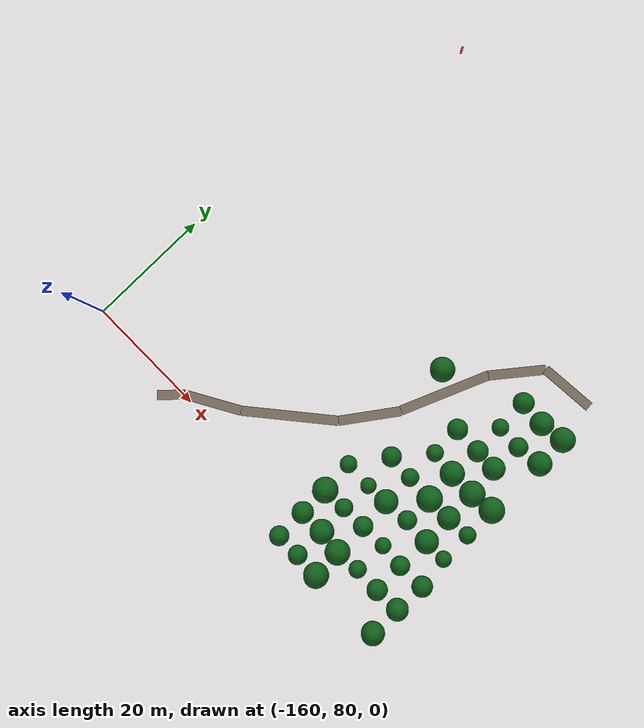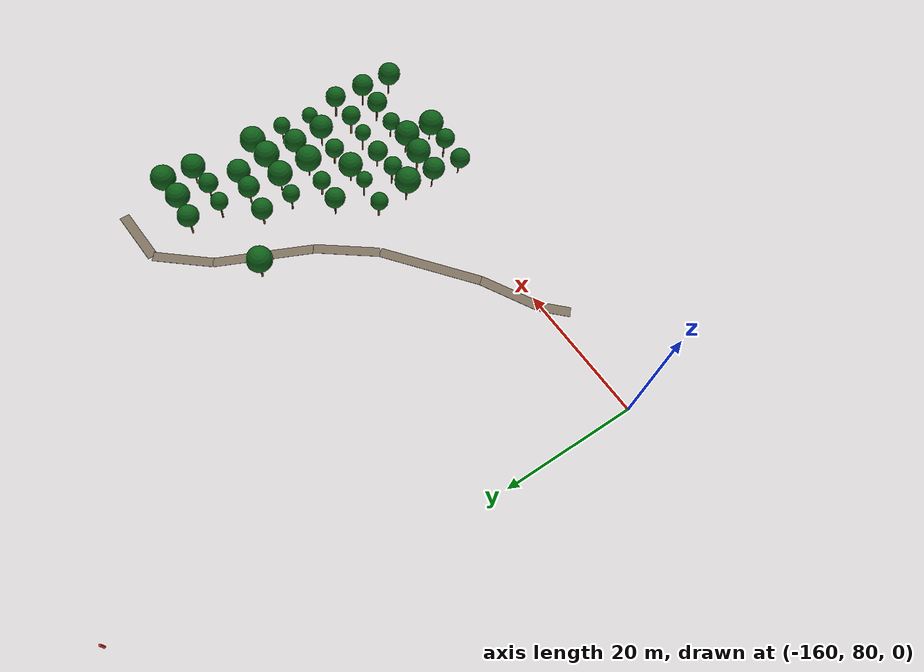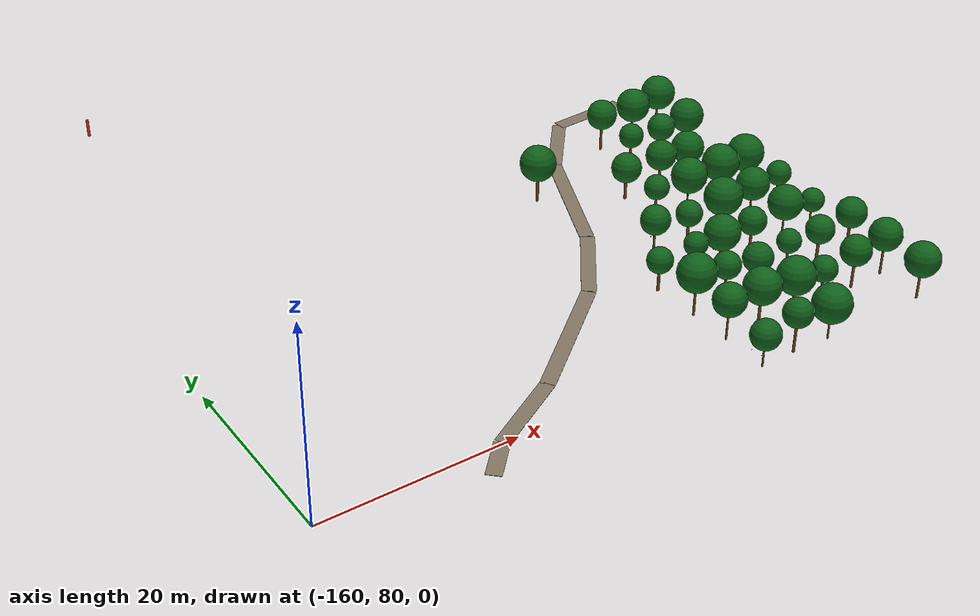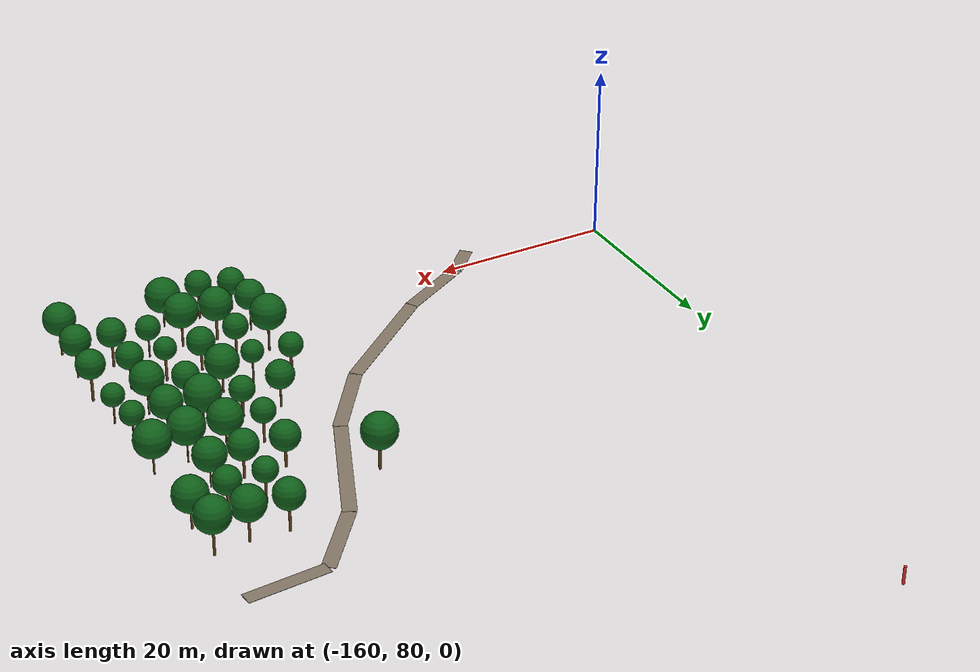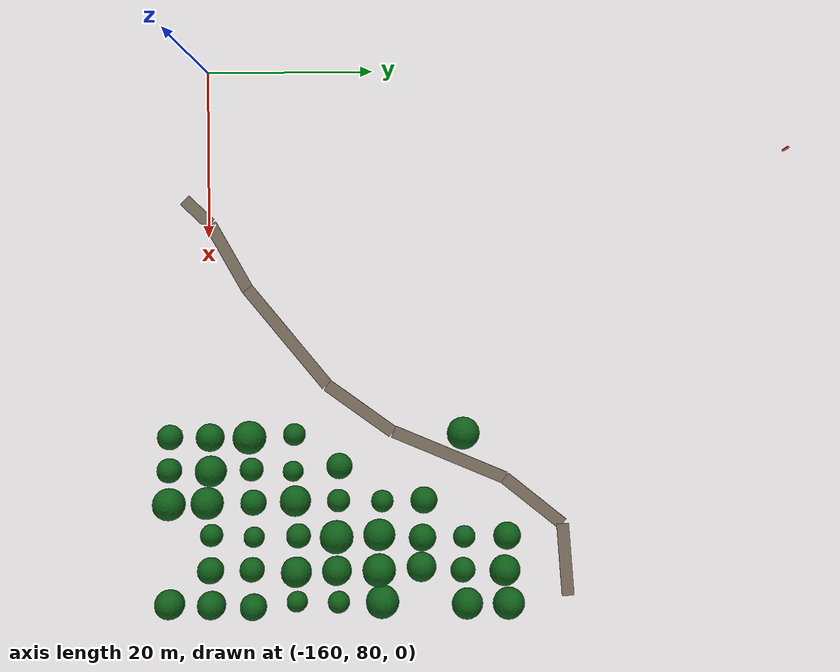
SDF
<sdf version="1.9">
 <world name="cheongsong_orchard">
  <model name="road_66">
   <static>true</static>
   <pose>-100.4 123.0 0.02 0 0 -3.0731</pose>
   <link name="link">
    <collision name="collision">
     <geometry><box><size>8.8 1.5 0.04</size></box></geometry>
     <surface><friction><ode><mu>0.9</mu><mu2>0.9</mu2></ode></friction></surface>
    </collision>
    <visual name="visual">
     <geometry><box><size>8.8 1.5 0.04</size></box></geometry>
     <material><ambient>0.4 0.35 0.28 1</ambient><diffuse>0.5 0.45 0.38 1</diffuse></material>
    </visual>
   </link>
  </model>
  <model name="road_67">
   <static>true</static>
   <pose>-107.6 119.2 0.02 0 0 -2.2514</pose>
   <link name="link">
    <collision name="collision">
     <geometry><box><size>9.0 1.5 0.04</size></box></geometry>
     <surface><friction><ode><mu>0.9</mu><mu2>0.9</mu2></ode></friction></surface>
    </collision>
    <visual name="visual">
     <geometry><box><size>9.0 1.5 0.04</size></box></geometry>
     <material><ambient>0.4 0.35 0.28 1</ambient><diffuse>0.5 0.45 0.38 1</diffuse></material>
    </visual>
   </link>
  </model>
  <model name="road_68">
   <static>true</static>
   <pose>-113.3 109.0 0.02 0 0 -1.9727</pose>
   <link name="link">
    <collision name="collision">
     <geometry><box><size>14.7 1.5 0.04</size></box></geometry>
     <surface><friction><ode><mu>0.9</mu><mu2>0.9</mu2></ode></friction></surface>
    </collision>
    <visual name="visual">
     <geometry><box><size>14.7 1.5 0.04</size></box></geometry>
     <material><ambient>0.4 0.35 0.28 1</ambient><diffuse>0.5 0.45 0.38 1</diffuse></material>
    </visual>
   </link>
  </model>
  <model name="road_69">
   <static>true</static>
   <pose>-119.0 98.2 0.02 0 0 -2.1991</pose>
   <link name="link">
    <collision name="collision">
     <geometry><box><size>9.8 1.5 0.04</size></box></geometry>
     <surface><friction><ode><mu>0.9</mu><mu2>0.9</mu2></ode></friction></surface>
    </collision>
    <visual name="visual">
     <geometry><box><size>9.8 1.5 0.04</size></box></geometry>
     <material><ambient>0.4 0.35 0.28 1</ambient><diffuse>0.5 0.45 0.38 1</diffuse></material>
    </visual>
   </link>
  </model>
  <model name="road_70">
   <static>true</static>
   <pose>-127.8 89.4 0.02 0 0 -2.4568</pose>
   <link name="link">
    <collision name="collision">
     <geometry><box><size>15.2 1.5 0.04</size></box></geometry>
     <surface><friction><ode><mu>0.9</mu><mu2>0.9</mu2></ode></friction></surface>
    </collision>
    <visual name="visual">
     <geometry><box><size>15.2 1.5 0.04</size></box></geometry>
     <material><ambient>0.4 0.35 0.28 1</ambient><diffuse>0.5 0.45 0.38 1</diffuse></material>
    </visual>
   </link>
  </model>
  <model name="road_71">
   <static>true</static>
   <pose>-137.6 82.4 0.02 0 0 -2.6308</pose>
   <link name="link">
    <collision name="collision">
     <geometry><box><size>9.1 1.5 0.04</size></box></geometry>
     <surface><friction><ode><mu>0.9</mu><mu2>0.9</mu2></ode></friction></surface>
    </collision>
    <visual name="visual">
     <geometry><box><size>9.1 1.5 0.04</size></box></geometry>
     <material><ambient>0.4 0.35 0.28 1</ambient><diffuse>0.5 0.45 0.38 1</diffuse></material>
    </visual>
   </link>
  </model>
  <model name="road_72">
   <static>true</static>
   <pose>-143.1 78.6 0.02 0 0 -2.3371</pose>
   <link name="link">
    <collision name="collision">
     <geometry><box><size>4.3 1.5 0.04</size></box></geometry>
     <surface><friction><ode><mu>0.9</mu><mu2>0.9</mu2></ode></friction></surface>
    </collision>
    <visual name="visual">
     <geometry><box><size>4.3 1.5 0.04</size></box></geometry>
     <material><ambient>0.4 0.35 0.28 1</ambient><diffuse>0.5 0.45 0.38 1</diffuse></material>
    </visual>
   </link>
  </model>
  <model name="apple_tree_1970">
   <static>true</static>
   <pose>-116.00 75.99 0 0 0 0</pose>
   <link name="link">
    <collision name="trunk_col">
     <pose>0 0 1.03 0 0 0</pose>
     <geometry><cylinder><radius>0.085</radius><length>2.05</length></cylinder></geometry>
    </collision>
    <visual name="trunk_vis">
     <pose>0 0 1.03 0 0 0</pose>
     <geometry><cylinder><radius>0.085</radius><length>2.05</length></cylinder></geometry>
     <material><ambient>0.35 0.22 0.08 1</ambient><diffuse>0.45 0.30 0.12 1</diffuse></material>
    </visual>
    <collision name="canopy_col">
     <pose>0 0 3.55 0 0 0</pose>
     <geometry><sphere><radius>1.50</radius></sphere></geometry>
    </collision>
    <visual name="canopy_vis">
     <pose>0 0 3.55 0 0 0</pose>
     <geometry><sphere><radius>1.50</radius></sphere></geometry>
     <material><ambient>0.04 0.28 0.06 1</ambient><diffuse>0.06 0.38 0.10 1</diffuse></material>
    </visual>
   </link>
  </model>
  <model name="apple_tree_1971">
   <static>true</static>
   <pose>-112.14 76.09 0 0 0 0</pose>
   <link name="link">
    <collision name="trunk_col">
     <pose>0 0 1.45 0 0 0</pose>
     <geometry><cylinder><radius>0.124</radius><length>2.89</length></cylinder></geometry>
    </collision>
    <visual name="trunk_vis">
     <pose>0 0 1.45 0 0 0</pose>
     <geometry><cylinder><radius>0.124</radius><length>2.89</length></cylinder></geometry>
     <material><ambient>0.35 0.22 0.08 1</ambient><diffuse>0.45 0.30 0.12 1</diffuse></material>
    </visual>
    <collision name="canopy_col">
     <pose>0 0 4.36 0 0 0</pose>
     <geometry><sphere><radius>1.46</radius></sphere></geometry>
    </collision>
    <visual name="canopy_vis">
     <pose>0 0 4.36 0 0 0</pose>
     <geometry><sphere><radius>1.46</radius></sphere></geometry>
     <material><ambient>0.04 0.28 0.06 1</ambient><diffuse>0.06 0.38 0.10 1</diffuse></material>
    </visual>
   </link>
  </model>
  <model name="apple_tree_1972">
   <static>true</static>
   <pose>-108.09 75.88 0 0 0 0</pose>
   <link name="link">
    <collision name="trunk_col">
     <pose>0 0 1.00 0 0 0</pose>
     <geometry><cylinder><radius>0.090</radius><length>2.00</length></cylinder></geometry>
    </collision>
    <visual name="trunk_vis">
     <pose>0 0 1.00 0 0 0</pose>
     <geometry><cylinder><radius>0.090</radius><length>2.00</length></cylinder></geometry>
     <material><ambient>0.35 0.22 0.08 1</ambient><diffuse>0.45 0.30 0.12 1</diffuse></material>
    </visual>
    <collision name="canopy_col">
     <pose>0 0 3.94 0 0 0</pose>
     <geometry><sphere><radius>1.93</radius></sphere></geometry>
    </collision>
    <visual name="canopy_vis">
     <pose>0 0 3.94 0 0 0</pose>
     <geometry><sphere><radius>1.93</radius></sphere></geometry>
     <material><ambient>0.04 0.28 0.06 1</ambient><diffuse>0.06 0.38 0.10 1</diffuse></material>
    </visual>
   </link>
  </model>
  <model name="apple_tree_1975">
   <static>true</static>
   <pose>-96.37 76.00 0 0 0 0</pose>
   <link name="link">
    <collision name="trunk_col">
     <pose>0 0 1.32 0 0 0</pose>
     <geometry><cylinder><radius>0.115</radius><length>2.64</length></cylinder></geometry>
    </collision>
    <visual name="trunk_vis">
     <pose>0 0 1.32 0 0 0</pose>
     <geometry><cylinder><radius>0.115</radius><length>2.64</length></cylinder></geometry>
     <material><ambient>0.35 0.22 0.08 1</ambient><diffuse>0.45 0.30 0.12 1</diffuse></material>
    </visual>
    <collision name="canopy_col">
     <pose>0 0 4.41 0 0 0</pose>
     <geometry><sphere><radius>1.77</radius></sphere></geometry>
    </collision>
    <visual name="canopy_vis">
     <pose>0 0 4.41 0 0 0</pose>
     <geometry><sphere><radius>1.77</radius></sphere></geometry>
     <material><ambient>0.04 0.28 0.06 1</ambient><diffuse>0.06 0.38 0.10 1</diffuse></material>
    </visual>
   </link>
  </model>
  <model name="apple_tree_2025">
   <static>true</static>
   <pose>-116.01 80.96 0 0 0 0</pose>
   <link name="link">
    <collision name="trunk_col">
     <pose>0 0 1.40 0 0 0</pose>
     <geometry><cylinder><radius>0.094</radius><length>2.80</length></cylinder></geometry>
    </collision>
    <visual name="trunk_vis">
     <pose>0 0 1.40 0 0 0</pose>
     <geometry><cylinder><radius>0.094</radius><length>2.80</length></cylinder></geometry>
     <material><ambient>0.35 0.22 0.08 1</ambient><diffuse>0.45 0.30 0.12 1</diffuse></material>
    </visual>
    <collision name="canopy_col">
     <pose>0 0 4.46 0 0 0</pose>
     <geometry><sphere><radius>1.66</radius></sphere></geometry>
    </collision>
    <visual name="canopy_vis">
     <pose>0 0 4.46 0 0 0</pose>
     <geometry><sphere><radius>1.66</radius></sphere></geometry>
     <material><ambient>0.04 0.28 0.06 1</ambient><diffuse>0.06 0.38 0.10 1</diffuse></material>
    </visual>
   </link>
  </model>
  <model name="apple_tree_2026">
   <static>true</static>
   <pose>-112.04 81.01 0 0 0 0</pose>
   <link name="link">
    <collision name="trunk_col">
     <pose>0 0 1.30 0 0 0</pose>
     <geometry><cylinder><radius>0.142</radius><length>2.61</length></cylinder></geometry>
    </collision>
    <visual name="trunk_vis">
     <pose>0 0 1.30 0 0 0</pose>
     <geometry><cylinder><radius>0.142</radius><length>2.61</length></cylinder></geometry>
     <material><ambient>0.35 0.22 0.08 1</ambient><diffuse>0.45 0.30 0.12 1</diffuse></material>
    </visual>
    <collision name="canopy_col">
     <pose>0 0 4.46 0 0 0</pose>
     <geometry><sphere><radius>1.85</radius></sphere></geometry>
    </collision>
    <visual name="canopy_vis">
     <pose>0 0 4.46 0 0 0</pose>
     <geometry><sphere><radius>1.85</radius></sphere></geometry>
     <material><ambient>0.04 0.28 0.06 1</ambient><diffuse>0.06 0.38 0.10 1</diffuse></material>
    </visual>
   </link>
  </model>
  <model name="apple_tree_2027">
   <static>true</static>
   <pose>-108.27 80.54 0 0 0 0</pose>
   <link name="link">
    <collision name="trunk_col">
     <pose>0 0 1.28 0 0 0</pose>
     <geometry><cylinder><radius>0.120</radius><length>2.56</length></cylinder></geometry>
    </collision>
    <visual name="trunk_vis">
     <pose>0 0 1.28 0 0 0</pose>
     <geometry><cylinder><radius>0.120</radius><length>2.56</length></cylinder></geometry>
     <material><ambient>0.35 0.22 0.08 1</ambient><diffuse>0.45 0.30 0.12 1</diffuse></material>
    </visual>
    <collision name="canopy_col">
     <pose>0 0 4.47 0 0 0</pose>
     <geometry><sphere><radius>1.91</radius></sphere></geometry>
    </collision>
    <visual name="canopy_vis">
     <pose>0 0 4.47 0 0 0</pose>
     <geometry><sphere><radius>1.91</radius></sphere></geometry>
     <material><ambient>0.04 0.28 0.06 1</ambient><diffuse>0.06 0.38 0.10 1</diffuse></material>
    </visual>
   </link>
  </model>
  <model name="apple_tree_2028">
   <static>true</static>
   <pose>-104.34 80.82 0 0 0 0</pose>
   <link name="link">
    <collision name="trunk_col">
     <pose>0 0 1.13 0 0 0</pose>
     <geometry><cylinder><radius>0.095</radius><length>2.25</length></cylinder></geometry>
    </collision>
    <visual name="trunk_vis">
     <pose>0 0 1.13 0 0 0</pose>
     <geometry><cylinder><radius>0.095</radius><length>2.25</length></cylinder></geometry>
     <material><ambient>0.35 0.22 0.08 1</ambient><diffuse>0.45 0.30 0.12 1</diffuse></material>
    </visual>
    <collision name="canopy_col">
     <pose>0 0 3.60 0 0 0</pose>
     <geometry><sphere><radius>1.34</radius></sphere></geometry>
    </collision>
    <visual name="canopy_vis">
     <pose>0 0 3.60 0 0 0</pose>
     <geometry><sphere><radius>1.34</radius></sphere></geometry>
     <material><ambient>0.04 0.28 0.06 1</ambient><diffuse>0.06 0.38 0.10 1</diffuse></material>
    </visual>
   </link>
  </model>
  <model name="apple_tree_2029">
   <static>true</static>
   <pose>-100.29 80.81 0 0 0 0</pose>
   <link name="link">
    <collision name="trunk_col">
     <pose>0 0 1.33 0 0 0</pose>
     <geometry><cylinder><radius>0.130</radius><length>2.65</length></cylinder></geometry>
    </collision>
    <visual name="trunk_vis">
     <pose>0 0 1.33 0 0 0</pose>
     <geometry><cylinder><radius>0.130</radius><length>2.65</length></cylinder></geometry>
     <material><ambient>0.35 0.22 0.08 1</ambient><diffuse>0.45 0.30 0.12 1</diffuse></material>
    </visual>
    <collision name="canopy_col">
     <pose>0 0 4.22 0 0 0</pose>
     <geometry><sphere><radius>1.57</radius></sphere></geometry>
    </collision>
    <visual name="canopy_vis">
     <pose>0 0 4.22 0 0 0</pose>
     <geometry><sphere><radius>1.57</radius></sphere></geometry>
     <material><ambient>0.04 0.28 0.06 1</ambient><diffuse>0.06 0.38 0.10 1</diffuse></material>
    </visual>
   </link>
  </model>
  <model name="apple_tree_2030">
   <static>true</static>
   <pose>-96.26 80.96 0 0 0 0</pose>
   <link name="link">
    <collision name="trunk_col">
     <pose>0 0 1.42 0 0 0</pose>
     <geometry><cylinder><radius>0.114</radius><length>2.85</length></cylinder></geometry>
    </collision>
    <visual name="trunk_vis">
     <pose>0 0 1.42 0 0 0</pose>
     <geometry><cylinder><radius>0.114</radius><length>2.85</length></cylinder></geometry>
     <material><ambient>0.35 0.22 0.08 1</ambient><diffuse>0.45 0.30 0.12 1</diffuse></material>
    </visual>
    <collision name="canopy_col">
     <pose>0 0 4.53 0 0 0</pose>
     <geometry><sphere><radius>1.68</radius></sphere></geometry>
    </collision>
    <visual name="canopy_vis">
     <pose>0 0 4.53 0 0 0</pose>
     <geometry><sphere><radius>1.68</radius></sphere></geometry>
     <material><ambient>0.04 0.28 0.06 1</ambient><diffuse>0.06 0.38 0.10 1</diffuse></material>
    </visual>
   </link>
  </model>
  <model name="apple_tree_2082">
   <static>true</static>
   <pose>-115.99 85.65 0 0 0 0</pose>
   <link name="link">
    <collision name="trunk_col">
     <pose>0 0 1.42 0 0 0</pose>
     <geometry><cylinder><radius>0.114</radius><length>2.83</length></cylinder></geometry>
    </collision>
    <visual name="trunk_vis">
     <pose>0 0 1.42 0 0 0</pose>
     <geometry><cylinder><radius>0.114</radius><length>2.83</length></cylinder></geometry>
     <material><ambient>0.35 0.22 0.08 1</ambient><diffuse>0.45 0.30 0.12 1</diffuse></material>
    </visual>
    <collision name="canopy_col">
     <pose>0 0 4.79 0 0 0</pose>
     <geometry><sphere><radius>1.96</radius></sphere></geometry>
    </collision>
    <visual name="canopy_vis">
     <pose>0 0 4.79 0 0 0</pose>
     <geometry><sphere><radius>1.96</radius></sphere></geometry>
     <material><ambient>0.04 0.28 0.06 1</ambient><diffuse>0.06 0.38 0.10 1</diffuse></material>
    </visual>
   </link>
  </model>
  <model name="apple_tree_2083">
   <static>true</static>
   <pose>-112.18 85.75 0 0 0 0</pose>
   <link name="link">
    <collision name="trunk_col">
     <pose>0 0 1.40 0 0 0</pose>
     <geometry><cylinder><radius>0.124</radius><length>2.80</length></cylinder></geometry>
    </collision>
    <visual name="trunk_vis">
     <pose>0 0 1.40 0 0 0</pose>
     <geometry><cylinder><radius>0.124</radius><length>2.80</length></cylinder></geometry>
     <material><ambient>0.35 0.22 0.08 1</ambient><diffuse>0.45 0.30 0.12 1</diffuse></material>
    </visual>
    <collision name="canopy_col">
     <pose>0 0 4.19 0 0 0</pose>
     <geometry><sphere><radius>1.39</radius></sphere></geometry>
    </collision>
    <visual name="canopy_vis">
     <pose>0 0 4.19 0 0 0</pose>
     <geometry><sphere><radius>1.39</radius></sphere></geometry>
     <material><ambient>0.04 0.28 0.06 1</ambient><diffuse>0.06 0.38 0.10 1</diffuse></material>
    </visual>
   </link>
  </model>
  <model name="apple_tree_2084">
   <static>true</static>
   <pose>-108.18 85.81 0 0 0 0</pose>
   <link name="link">
    <collision name="trunk_col">
     <pose>0 0 1.01 0 0 0</pose>
     <geometry><cylinder><radius>0.122</radius><length>2.02</length></cylinder></geometry>
    </collision>
    <visual name="trunk_vis">
     <pose>0 0 1.01 0 0 0</pose>
     <geometry><cylinder><radius>0.122</radius><length>2.02</length></cylinder></geometry>
     <material><ambient>0.35 0.22 0.08 1</ambient><diffuse>0.45 0.30 0.12 1</diffuse></material>
    </visual>
    <collision name="canopy_col">
     <pose>0 0 3.56 0 0 0</pose>
     <geometry><sphere><radius>1.53</radius></sphere></geometry>
    </collision>
    <visual name="canopy_vis">
     <pose>0 0 3.56 0 0 0</pose>
     <geometry><sphere><radius>1.53</radius></sphere></geometry>
     <material><ambient>0.04 0.28 0.06 1</ambient><diffuse>0.06 0.38 0.10 1</diffuse></material>
    </visual>
   </link>
  </model>
  <model name="apple_tree_2085">
   <static>true</static>
   <pose>-104.15 85.93 0 0 0 0</pose>
   <link name="link">
    <collision name="trunk_col">
     <pose>0 0 1.35 0 0 0</pose>
     <geometry><cylinder><radius>0.134</radius><length>2.71</length></cylinder></geometry>
    </collision>
    <visual name="trunk_vis">
     <pose>0 0 1.35 0 0 0</pose>
     <geometry><cylinder><radius>0.134</radius><length>2.71</length></cylinder></geometry>
     <material><ambient>0.35 0.22 0.08 1</ambient><diffuse>0.45 0.30 0.12 1</diffuse></material>
    </visual>
    <collision name="canopy_col">
     <pose>0 0 3.94 0 0 0</pose>
     <geometry><sphere><radius>1.23</radius></sphere></geometry>
    </collision>
    <visual name="canopy_vis">
     <pose>0 0 3.94 0 0 0</pose>
     <geometry><sphere><radius>1.23</radius></sphere></geometry>
     <material><ambient>0.04 0.28 0.06 1</ambient><diffuse>0.06 0.38 0.10 1</diffuse></material>
    </visual>
   </link>
  </model>
  <model name="apple_tree_2086">
   <static>true</static>
   <pose>-100.32 85.68 0 0 0 0</pose>
   <link name="link">
    <collision name="trunk_col">
     <pose>0 0 1.29 0 0 0</pose>
     <geometry><cylinder><radius>0.149</radius><length>2.58</length></cylinder></geometry>
    </collision>
    <visual name="trunk_vis">
     <pose>0 0 1.29 0 0 0</pose>
     <geometry><cylinder><radius>0.149</radius><length>2.58</length></cylinder></geometry>
     <material><ambient>0.35 0.22 0.08 1</ambient><diffuse>0.45 0.30 0.12 1</diffuse></material>
    </visual>
    <collision name="canopy_col">
     <pose>0 0 4.06 0 0 0</pose>
     <geometry><sphere><radius>1.47</radius></sphere></geometry>
    </collision>
    <visual name="canopy_vis">
     <pose>0 0 4.06 0 0 0</pose>
     <geometry><sphere><radius>1.47</radius></sphere></geometry>
     <material><ambient>0.04 0.28 0.06 1</ambient><diffuse>0.06 0.38 0.10 1</diffuse></material>
    </visual>
   </link>
  </model>
  <model name="apple_tree_2087">
   <static>true</static>
   <pose>-95.99 85.87 0 0 0 0</pose>
   <link name="link">
    <collision name="trunk_col">
     <pose>0 0 1.42 0 0 0</pose>
     <geometry><cylinder><radius>0.140</radius><length>2.85</length></cylinder></geometry>
    </collision>
    <visual name="trunk_vis">
     <pose>0 0 1.42 0 0 0</pose>
     <geometry><cylinder><radius>0.140</radius><length>2.85</length></cylinder></geometry>
     <material><ambient>0.35 0.22 0.08 1</ambient><diffuse>0.45 0.30 0.12 1</diffuse></material>
    </visual>
    <collision name="canopy_col">
     <pose>0 0 4.42 0 0 0</pose>
     <geometry><sphere><radius>1.58</radius></sphere></geometry>
    </collision>
    <visual name="canopy_vis">
     <pose>0 0 4.42 0 0 0</pose>
     <geometry><sphere><radius>1.58</radius></sphere></geometry>
     <material><ambient>0.04 0.28 0.06 1</ambient><diffuse>0.06 0.38 0.10 1</diffuse></material>
    </visual>
   </link>
  </model>
  <model name="apple_tree_2138">
   <static>true</static>
   <pose>-116.20 90.72 0 0 0 0</pose>
   <link name="link">
    <collision name="trunk_col">
     <pose>0 0 1.07 0 0 0</pose>
     <geometry><cylinder><radius>0.145</radius><length>2.14</length></cylinder></geometry>
    </collision>
    <visual name="trunk_vis">
     <pose>0 0 1.07 0 0 0</pose>
     <geometry><cylinder><radius>0.145</radius><length>2.14</length></cylinder></geometry>
     <material><ambient>0.35 0.22 0.08 1</ambient><diffuse>0.45 0.30 0.12 1</diffuse></material>
    </visual>
    <collision name="canopy_col">
     <pose>0 0 3.47 0 0 0</pose>
     <geometry><sphere><radius>1.33</radius></sphere></geometry>
    </collision>
    <visual name="canopy_vis">
     <pose>0 0 3.47 0 0 0</pose>
     <geometry><sphere><radius>1.33</radius></sphere></geometry>
     <material><ambient>0.04 0.28 0.06 1</ambient><diffuse>0.06 0.38 0.10 1</diffuse></material>
    </visual>
   </link>
  </model>
  <model name="apple_tree_2139">
   <static>true</static>
   <pose>-111.89 90.60 0 0 0 0</pose>
   <link name="link">
    <collision name="trunk_col">
     <pose>0 0 1.32 0 0 0</pose>
     <geometry><cylinder><radius>0.099</radius><length>2.64</length></cylinder></geometry>
    </collision>
    <visual name="trunk_vis">
     <pose>0 0 1.32 0 0 0</pose>
     <geometry><cylinder><radius>0.099</radius><length>2.64</length></cylinder></geometry>
     <material><ambient>0.35 0.22 0.08 1</ambient><diffuse>0.45 0.30 0.12 1</diffuse></material>
    </visual>
    <collision name="canopy_col">
     <pose>0 0 3.86 0 0 0</pose>
     <geometry><sphere><radius>1.22</radius></sphere></geometry>
    </collision>
    <visual name="canopy_vis">
     <pose>0 0 3.86 0 0 0</pose>
     <geometry><sphere><radius>1.22</radius></sphere></geometry>
     <material><ambient>0.04 0.28 0.06 1</ambient><diffuse>0.06 0.38 0.10 1</diffuse></material>
    </visual>
   </link>
  </model>
  <model name="apple_tree_2140">
   <static>true</static>
   <pose>-108.36 90.82 0 0 0 0</pose>
   <link name="link">
    <collision name="trunk_col">
     <pose>0 0 0.99 0 0 0</pose>
     <geometry><cylinder><radius>0.108</radius><length>1.97</length></cylinder></geometry>
    </collision>
    <visual name="trunk_vis">
     <pose>0 0 0.99 0 0 0</pose>
     <geometry><cylinder><radius>0.108</radius><length>1.97</length></cylinder></geometry>
     <material><ambient>0.35 0.22 0.08 1</ambient><diffuse>0.45 0.30 0.12 1</diffuse></material>
    </visual>
    <collision name="canopy_col">
     <pose>0 0 3.81 0 0 0</pose>
     <geometry><sphere><radius>1.84</radius></sphere></geometry>
    </collision>
    <visual name="canopy_vis">
     <pose>0 0 3.81 0 0 0</pose>
     <geometry><sphere><radius>1.84</radius></sphere></geometry>
     <material><ambient>0.04 0.28 0.06 1</ambient><diffuse>0.06 0.38 0.10 1</diffuse></material>
    </visual>
   </link>
  </model>
  <model name="apple_tree_2141">
   <static>true</static>
   <pose>-104.19 91.11 0 0 0 0</pose>
   <link name="link">
    <collision name="trunk_col">
     <pose>0 0 1.05 0 0 0</pose>
     <geometry><cylinder><radius>0.138</radius><length>2.10</length></cylinder></geometry>
    </collision>
    <visual name="trunk_vis">
     <pose>0 0 1.05 0 0 0</pose>
     <geometry><cylinder><radius>0.138</radius><length>2.10</length></cylinder></geometry>
     <material><ambient>0.35 0.22 0.08 1</ambient><diffuse>0.45 0.30 0.12 1</diffuse></material>
    </visual>
    <collision name="canopy_col">
     <pose>0 0 3.56 0 0 0</pose>
     <geometry><sphere><radius>1.46</radius></sphere></geometry>
    </collision>
    <visual name="canopy_vis">
     <pose>0 0 3.56 0 0 0</pose>
     <geometry><sphere><radius>1.46</radius></sphere></geometry>
     <material><ambient>0.04 0.28 0.06 1</ambient><diffuse>0.06 0.38 0.10 1</diffuse></material>
    </visual>
   </link>
  </model>
  <model name="apple_tree_2142">
   <static>true</static>
   <pose>-100.06 90.95 0 0 0 0</pose>
   <link name="link">
    <collision name="trunk_col">
     <pose>0 0 1.28 0 0 0</pose>
     <geometry><cylinder><radius>0.090</radius><length>2.57</length></cylinder></geometry>
    </collision>
    <visual name="trunk_vis">
     <pose>0 0 1.28 0 0 0</pose>
     <geometry><cylinder><radius>0.090</radius><length>2.57</length></cylinder></geometry>
     <material><ambient>0.35 0.22 0.08 1</ambient><diffuse>0.45 0.30 0.12 1</diffuse></material>
    </visual>
    <collision name="canopy_col">
     <pose>0 0 4.38 0 0 0</pose>
     <geometry><sphere><radius>1.81</radius></sphere></geometry>
    </collision>
    <visual name="canopy_vis">
     <pose>0 0 4.38 0 0 0</pose>
     <geometry><sphere><radius>1.81</radius></sphere></geometry>
     <material><ambient>0.04 0.28 0.06 1</ambient><diffuse>0.06 0.38 0.10 1</diffuse></material>
    </visual>
   </link>
  </model>
  <model name="apple_tree_2143">
   <static>true</static>
   <pose>-96.37 90.88 0 0 0 0</pose>
   <link name="link">
    <collision name="trunk_col">
     <pose>0 0 1.11 0 0 0</pose>
     <geometry><cylinder><radius>0.095</radius><length>2.22</length></cylinder></geometry>
    </collision>
    <visual name="trunk_vis">
     <pose>0 0 1.11 0 0 0</pose>
     <geometry><cylinder><radius>0.095</radius><length>2.22</length></cylinder></geometry>
     <material><ambient>0.35 0.22 0.08 1</ambient><diffuse>0.45 0.30 0.12 1</diffuse></material>
    </visual>
    <collision name="canopy_col">
     <pose>0 0 3.45 0 0 0</pose>
     <geometry><sphere><radius>1.24</radius></sphere></geometry>
    </collision>
    <visual name="canopy_vis">
     <pose>0 0 3.45 0 0 0</pose>
     <geometry><sphere><radius>1.24</radius></sphere></geometry>
     <material><ambient>0.04 0.28 0.06 1</ambient><diffuse>0.06 0.38 0.10 1</diffuse></material>
    </visual>
   </link>
  </model>
  <model name="apple_tree_2180">
   <static>true</static>
   <pose>-112.47 96.08 0 0 0 0</pose>
   <link name="link">
    <collision name="trunk_col">
     <pose>0 0 1.19 0 0 0</pose>
     <geometry><cylinder><radius>0.108</radius><length>2.39</length></cylinder></geometry>
    </collision>
    <visual name="trunk_vis">
     <pose>0 0 1.19 0 0 0</pose>
     <geometry><cylinder><radius>0.108</radius><length>2.39</length></cylinder></geometry>
     <material><ambient>0.35 0.22 0.08 1</ambient><diffuse>0.45 0.30 0.12 1</diffuse></material>
    </visual>
    <collision name="canopy_col">
     <pose>0 0 3.93 0 0 0</pose>
     <geometry><sphere><radius>1.54</radius></sphere></geometry>
    </collision>
    <visual name="canopy_vis">
     <pose>0 0 3.93 0 0 0</pose>
     <geometry><sphere><radius>1.54</radius></sphere></geometry>
     <material><ambient>0.04 0.28 0.06 1</ambient><diffuse>0.06 0.38 0.10 1</diffuse></material>
    </visual>
   </link>
  </model>
  <model name="apple_tree_2181">
   <static>true</static>
   <pose>-108.31 95.87 0 0 0 0</pose>
   <link name="link">
    <collision name="trunk_col">
     <pose>0 0 1.00 0 0 0</pose>
     <geometry><cylinder><radius>0.149</radius><length>2.00</length></cylinder></geometry>
    </collision>
    <visual name="trunk_vis">
     <pose>0 0 1.00 0 0 0</pose>
     <geometry><cylinder><radius>0.149</radius><length>2.00</length></cylinder></geometry>
     <material><ambient>0.35 0.22 0.08 1</ambient><diffuse>0.45 0.30 0.12 1</diffuse></material>
    </visual>
    <collision name="canopy_col">
     <pose>0 0 3.37 0 0 0</pose>
     <geometry><sphere><radius>1.37</radius></sphere></geometry>
    </collision>
    <visual name="canopy_vis">
     <pose>0 0 3.37 0 0 0</pose>
     <geometry><sphere><radius>1.37</radius></sphere></geometry>
     <material><ambient>0.04 0.28 0.06 1</ambient><diffuse>0.06 0.38 0.10 1</diffuse></material>
    </visual>
   </link>
  </model>
  <model name="apple_tree_2182">
   <static>true</static>
   <pose>-104.09 95.68 0 0 0 0</pose>
   <link name="link">
    <collision name="trunk_col">
     <pose>0 0 1.03 0 0 0</pose>
     <geometry><cylinder><radius>0.096</radius><length>2.06</length></cylinder></geometry>
    </collision>
    <visual name="trunk_vis">
     <pose>0 0 1.03 0 0 0</pose>
     <geometry><cylinder><radius>0.096</radius><length>2.06</length></cylinder></geometry>
     <material><ambient>0.35 0.22 0.08 1</ambient><diffuse>0.45 0.30 0.12 1</diffuse></material>
    </visual>
    <collision name="canopy_col">
     <pose>0 0 4.05 0 0 0</pose>
     <geometry><sphere><radius>1.99</radius></sphere></geometry>
    </collision>
    <visual name="canopy_vis">
     <pose>0 0 4.05 0 0 0</pose>
     <geometry><sphere><radius>1.99</radius></sphere></geometry>
     <material><ambient>0.04 0.28 0.06 1</ambient><diffuse>0.06 0.38 0.10 1</diffuse></material>
    </visual>
   </link>
  </model>
  <model name="apple_tree_2183">
   <static>true</static>
   <pose>-100.15 95.71 0 0 0 0</pose>
   <link name="link">
    <collision name="trunk_col">
     <pose>0 0 1.24 0 0 0</pose>
     <geometry><cylinder><radius>0.094</radius><length>2.48</length></cylinder></geometry>
    </collision>
    <visual name="trunk_vis">
     <pose>0 0 1.24 0 0 0</pose>
     <geometry><cylinder><radius>0.094</radius><length>2.48</length></cylinder></geometry>
     <material><ambient>0.35 0.22 0.08 1</ambient><diffuse>0.45 0.30 0.12 1</diffuse></material>
    </visual>
    <collision name="canopy_col">
     <pose>0 0 4.23 0 0 0</pose>
     <geometry><sphere><radius>1.75</radius></sphere></geometry>
    </collision>
    <visual name="canopy_vis">
     <pose>0 0 4.23 0 0 0</pose>
     <geometry><sphere><radius>1.75</radius></sphere></geometry>
     <material><ambient>0.04 0.28 0.06 1</ambient><diffuse>0.06 0.38 0.10 1</diffuse></material>
    </visual>
   </link>
  </model>
  <model name="apple_tree_2184">
   <static>true</static>
   <pose>-96.44 95.90 0 0 0 0</pose>
   <link name="link">
    <collision name="trunk_col">
     <pose>0 0 1.44 0 0 0</pose>
     <geometry><cylinder><radius>0.081</radius><length>2.87</length></cylinder></geometry>
    </collision>
    <visual name="trunk_vis">
     <pose>0 0 1.44 0 0 0</pose>
     <geometry><cylinder><radius>0.081</radius><length>2.87</length></cylinder></geometry>
     <material><ambient>0.35 0.22 0.08 1</ambient><diffuse>0.45 0.30 0.12 1</diffuse></material>
    </visual>
    <collision name="canopy_col">
     <pose>0 0 4.18 0 0 0</pose>
     <geometry><sphere><radius>1.30</radius></sphere></geometry>
    </collision>
    <visual name="canopy_vis">
     <pose>0 0 4.18 0 0 0</pose>
     <geometry><sphere><radius>1.30</radius></sphere></geometry>
     <material><ambient>0.04 0.28 0.06 1</ambient><diffuse>0.06 0.38 0.10 1</diffuse></material>
    </visual>
   </link>
  </model>
  <model name="apple_tree_2222">
   <static>true</static>
   <pose>-108.26 101.10 0 0 0 0</pose>
   <link name="link">
    <collision name="trunk_col">
     <pose>0 0 1.24 0 0 0</pose>
     <geometry><cylinder><radius>0.125</radius><length>2.49</length></cylinder></geometry>
    </collision>
    <visual name="trunk_vis">
     <pose>0 0 1.24 0 0 0</pose>
     <geometry><cylinder><radius>0.125</radius><length>2.49</length></cylinder></geometry>
     <material><ambient>0.35 0.22 0.08 1</ambient><diffuse>0.45 0.30 0.12 1</diffuse></material>
    </visual>
    <collision name="canopy_col">
     <pose>0 0 3.80 0 0 0</pose>
     <geometry><sphere><radius>1.32</radius></sphere></geometry>
    </collision>
    <visual name="canopy_vis">
     <pose>0 0 3.80 0 0 0</pose>
     <geometry><sphere><radius>1.32</radius></sphere></geometry>
     <material><ambient>0.04 0.28 0.06 1</ambient><diffuse>0.06 0.38 0.10 1</diffuse></material>
    </visual>
   </link>
  </model>
  <model name="apple_tree_2223">
   <static>true</static>
   <pose>-104.33 100.73 0 0 0 0</pose>
   <link name="link">
    <collision name="trunk_col">
     <pose>0 0 1.10 0 0 0</pose>
     <geometry><cylinder><radius>0.087</radius><length>2.20</length></cylinder></geometry>
    </collision>
    <visual name="trunk_vis">
     <pose>0 0 1.10 0 0 0</pose>
     <geometry><cylinder><radius>0.087</radius><length>2.20</length></cylinder></geometry>
     <material><ambient>0.35 0.22 0.08 1</ambient><diffuse>0.45 0.30 0.12 1</diffuse></material>
    </visual>
    <collision name="canopy_col">
     <pose>0 0 4.09 0 0 0</pose>
     <geometry><sphere><radius>1.89</radius></sphere></geometry>
    </collision>
    <visual name="canopy_vis">
     <pose>0 0 4.09 0 0 0</pose>
     <geometry><sphere><radius>1.89</radius></sphere></geometry>
     <material><ambient>0.04 0.28 0.06 1</ambient><diffuse>0.06 0.38 0.10 1</diffuse></material>
    </visual>
   </link>
  </model>
  <model name="apple_tree_2224">
   <static>true</static>
   <pose>-100.18 100.70 0 0 0 0</pose>
   <link name="link">
    <collision name="trunk_col">
     <pose>0 0 1.17 0 0 0</pose>
     <geometry><cylinder><radius>0.084</radius><length>2.34</length></cylinder></geometry>
    </collision>
    <visual name="trunk_vis">
     <pose>0 0 1.17 0 0 0</pose>
     <geometry><cylinder><radius>0.084</radius><length>2.34</length></cylinder></geometry>
     <material><ambient>0.35 0.22 0.08 1</ambient><diffuse>0.45 0.30 0.12 1</diffuse></material>
    </visual>
    <collision name="canopy_col">
     <pose>0 0 4.31 0 0 0</pose>
     <geometry><sphere><radius>1.97</radius></sphere></geometry>
    </collision>
    <visual name="canopy_vis">
     <pose>0 0 4.31 0 0 0</pose>
     <geometry><sphere><radius>1.97</radius></sphere></geometry>
     <material><ambient>0.04 0.28 0.06 1</ambient><diffuse>0.06 0.38 0.10 1</diffuse></material>
    </visual>
   </link>
  </model>
  <model name="apple_tree_2225">
   <static>true</static>
   <pose>-96.43 101.05 0 0 0 0</pose>
   <link name="link">
    <collision name="trunk_col">
     <pose>0 0 1.10 0 0 0</pose>
     <geometry><cylinder><radius>0.097</radius><length>2.20</length></cylinder></geometry>
    </collision>
    <visual name="trunk_vis">
     <pose>0 0 1.10 0 0 0</pose>
     <geometry><cylinder><radius>0.097</radius><length>2.20</length></cylinder></geometry>
     <material><ambient>0.35 0.22 0.08 1</ambient><diffuse>0.45 0.30 0.12 1</diffuse></material>
    </visual>
    <collision name="canopy_col">
     <pose>0 0 4.16 0 0 0</pose>
     <geometry><sphere><radius>1.97</radius></sphere></geometry>
    </collision>
    <visual name="canopy_vis">
     <pose>0 0 4.16 0 0 0</pose>
     <geometry><sphere><radius>1.97</radius></sphere></geometry>
     <material><ambient>0.04 0.28 0.06 1</ambient><diffuse>0.06 0.38 0.10 1</diffuse></material>
    </visual>
   </link>
  </model>
  <model name="apple_tree_2268">
   <static>true</static>
   <pose>-108.33 106.02 0 0 0 0</pose>
   <link name="link">
    <collision name="trunk_col">
     <pose>0 0 1.06 0 0 0</pose>
     <geometry><cylinder><radius>0.146</radius><length>2.12</length></cylinder></geometry>
    </collision>
    <visual name="trunk_vis">
     <pose>0 0 1.06 0 0 0</pose>
     <geometry><cylinder><radius>0.146</radius><length>2.12</length></cylinder></geometry>
     <material><ambient>0.35 0.22 0.08 1</ambient><diffuse>0.45 0.30 0.12 1</diffuse></material>
    </visual>
    <collision name="canopy_col">
     <pose>0 0 3.72 0 0 0</pose>
     <geometry><sphere><radius>1.60</radius></sphere></geometry>
    </collision>
    <visual name="canopy_vis">
     <pose>0 0 3.72 0 0 0</pose>
     <geometry><sphere><radius>1.60</radius></sphere></geometry>
     <material><ambient>0.04 0.28 0.06 1</ambient><diffuse>0.06 0.38 0.10 1</diffuse></material>
    </visual>
   </link>
  </model>
  <model name="apple_tree_2269">
   <static>true</static>
   <pose>-103.93 105.82 0 0 0 0</pose>
   <link name="link">
    <collision name="trunk_col">
     <pose>0 0 1.16 0 0 0</pose>
     <geometry><cylinder><radius>0.133</radius><length>2.32</length></cylinder></geometry>
    </collision>
    <visual name="trunk_vis">
     <pose>0 0 1.16 0 0 0</pose>
     <geometry><cylinder><radius>0.133</radius><length>2.32</length></cylinder></geometry>
     <material><ambient>0.35 0.22 0.08 1</ambient><diffuse>0.45 0.30 0.12 1</diffuse></material>
    </visual>
    <collision name="canopy_col">
     <pose>0 0 3.94 0 0 0</pose>
     <geometry><sphere><radius>1.62</radius></sphere></geometry>
    </collision>
    <visual name="canopy_vis">
     <pose>0 0 3.94 0 0 0</pose>
     <geometry><sphere><radius>1.62</radius></sphere></geometry>
     <material><ambient>0.04 0.28 0.06 1</ambient><diffuse>0.06 0.38 0.10 1</diffuse></material>
    </visual>
   </link>
  </model>
  <model name="apple_tree_2270">
   <static>true</static>
   <pose>-100.45 105.67 0 0 0 0</pose>
   <link name="link">
    <collision name="trunk_col">
     <pose>0 0 1.05 0 0 0</pose>
     <geometry><cylinder><radius>0.085</radius><length>2.10</length></cylinder></geometry>
    </collision>
    <visual name="trunk_vis">
     <pose>0 0 1.05 0 0 0</pose>
     <geometry><cylinder><radius>0.085</radius><length>2.10</length></cylinder></geometry>
     <material><ambient>0.35 0.22 0.08 1</ambient><diffuse>0.45 0.30 0.12 1</diffuse></material>
    </visual>
    <collision name="canopy_col">
     <pose>0 0 3.86 0 0 0</pose>
     <geometry><sphere><radius>1.76</radius></sphere></geometry>
    </collision>
    <visual name="canopy_vis">
     <pose>0 0 3.86 0 0 0</pose>
     <geometry><sphere><radius>1.76</radius></sphere></geometry>
     <material><ambient>0.04 0.28 0.06 1</ambient><diffuse>0.06 0.38 0.10 1</diffuse></material>
    </visual>
   </link>
  </model>
  <model name="apple_tree_2317">
   <static>true</static>
   <pose>-116.28 110.75 0 0 0 0</pose>
   <link name="link">
    <collision name="trunk_col">
     <pose>0 0 1.30 0 0 0</pose>
     <geometry><cylinder><radius>0.149</radius><length>2.60</length></cylinder></geometry>
    </collision>
    <visual name="trunk_vis">
     <pose>0 0 1.30 0 0 0</pose>
     <geometry><cylinder><radius>0.149</radius><length>2.60</length></cylinder></geometry>
     <material><ambient>0.35 0.22 0.08 1</ambient><diffuse>0.45 0.30 0.12 1</diffuse></material>
    </visual>
    <collision name="canopy_col">
     <pose>0 0 4.52 0 0 0</pose>
     <geometry><sphere><radius>1.92</radius></sphere></geometry>
    </collision>
    <visual name="canopy_vis">
     <pose>0 0 4.52 0 0 0</pose>
     <geometry><sphere><radius>1.92</radius></sphere></geometry>
     <material><ambient>0.04 0.28 0.06 1</ambient><diffuse>0.06 0.38 0.10 1</diffuse></material>
    </visual>
   </link>
  </model>
  <model name="apple_tree_2318">
   <static>true</static>
   <pose>-104.02 110.75 0 0 0 0</pose>
   <link name="link">
    <collision name="trunk_col">
     <pose>0 0 1.35 0 0 0</pose>
     <geometry><cylinder><radius>0.118</radius><length>2.69</length></cylinder></geometry>
    </collision>
    <visual name="trunk_vis">
     <pose>0 0 1.35 0 0 0</pose>
     <geometry><cylinder><radius>0.118</radius><length>2.69</length></cylinder></geometry>
     <material><ambient>0.35 0.22 0.08 1</ambient><diffuse>0.45 0.30 0.12 1</diffuse></material>
    </visual>
    <collision name="canopy_col">
     <pose>0 0 4.01 0 0 0</pose>
     <geometry><sphere><radius>1.32</radius></sphere></geometry>
    </collision>
    <visual name="canopy_vis">
     <pose>0 0 4.01 0 0 0</pose>
     <geometry><sphere><radius>1.32</radius></sphere></geometry>
     <material><ambient>0.04 0.28 0.06 1</ambient><diffuse>0.06 0.38 0.10 1</diffuse></material>
    </visual>
   </link>
  </model>
  <model name="apple_tree_2319">
   <static>true</static>
   <pose>-100.09 110.57 0 0 0 0</pose>
   <link name="link">
    <collision name="trunk_col">
     <pose>0 0 1.24 0 0 0</pose>
     <geometry><cylinder><radius>0.120</radius><length>2.49</length></cylinder></geometry>
    </collision>
    <visual name="trunk_vis">
     <pose>0 0 1.24 0 0 0</pose>
     <geometry><cylinder><radius>0.120</radius><length>2.49</length></cylinder></geometry>
     <material><ambient>0.35 0.22 0.08 1</ambient><diffuse>0.45 0.30 0.12 1</diffuse></material>
    </visual>
    <collision name="canopy_col">
     <pose>0 0 3.96 0 0 0</pose>
     <geometry><sphere><radius>1.48</radius></sphere></geometry>
    </collision>
    <visual name="canopy_vis">
     <pose>0 0 3.96 0 0 0</pose>
     <geometry><sphere><radius>1.48</radius></sphere></geometry>
     <material><ambient>0.04 0.28 0.06 1</ambient><diffuse>0.06 0.38 0.10 1</diffuse></material>
    </visual>
   </link>
  </model>
  <model name="apple_tree_2320">
   <static>true</static>
   <pose>-96.11 111.06 0 0 0 0</pose>
   <link name="link">
    <collision name="trunk_col">
     <pose>0 0 1.08 0 0 0</pose>
     <geometry><cylinder><radius>0.119</radius><length>2.16</length></cylinder></geometry>
    </collision>
    <visual name="trunk_vis">
     <pose>0 0 1.08 0 0 0</pose>
     <geometry><cylinder><radius>0.119</radius><length>2.16</length></cylinder></geometry>
     <material><ambient>0.35 0.22 0.08 1</ambient><diffuse>0.45 0.30 0.12 1</diffuse></material>
    </visual>
    <collision name="canopy_col">
     <pose>0 0 4.01 0 0 0</pose>
     <geometry><sphere><radius>1.85</radius></sphere></geometry>
    </collision>
    <visual name="canopy_vis">
     <pose>0 0 4.01 0 0 0</pose>
     <geometry><sphere><radius>1.85</radius></sphere></geometry>
     <material><ambient>0.04 0.28 0.06 1</ambient><diffuse>0.06 0.38 0.10 1</diffuse></material>
    </visual>
   </link>
  </model>
  <model name="apple_tree_2361">
   <static>true</static>
   <pose>-104.14 115.81 0 0 0 0</pose>
   <link name="link">
    <collision name="trunk_col">
     <pose>0 0 1.34 0 0 0</pose>
     <geometry><cylinder><radius>0.135</radius><length>2.68</length></cylinder></geometry>
    </collision>
    <visual name="trunk_vis">
     <pose>0 0 1.34 0 0 0</pose>
     <geometry><cylinder><radius>0.135</radius><length>2.68</length></cylinder></geometry>
     <material><ambient>0.35 0.22 0.08 1</ambient><diffuse>0.45 0.30 0.12 1</diffuse></material>
    </visual>
    <collision name="canopy_col">
     <pose>0 0 4.31 0 0 0</pose>
     <geometry><sphere><radius>1.63</radius></sphere></geometry>
    </collision>
    <visual name="canopy_vis">
     <pose>0 0 4.31 0 0 0</pose>
     <geometry><sphere><radius>1.63</radius></sphere></geometry>
     <material><ambient>0.04 0.28 0.06 1</ambient><diffuse>0.06 0.38 0.10 1</diffuse></material>
    </visual>
   </link>
  </model>
  <model name="apple_tree_2362">
   <static>true</static>
   <pose>-100.08 115.51 0 0 0 0</pose>
   <link name="link">
    <collision name="trunk_col">
     <pose>0 0 1.29 0 0 0</pose>
     <geometry><cylinder><radius>0.128</radius><length>2.58</length></cylinder></geometry>
    </collision>
    <visual name="trunk_vis">
     <pose>0 0 1.29 0 0 0</pose>
     <geometry><cylinder><radius>0.128</radius><length>2.58</length></cylinder></geometry>
     <material><ambient>0.35 0.22 0.08 1</ambient><diffuse>0.45 0.30 0.12 1</diffuse></material>
    </visual>
    <collision name="canopy_col">
     <pose>0 0 4.41 0 0 0</pose>
     <geometry><sphere><radius>1.83</radius></sphere></geometry>
    </collision>
    <visual name="canopy_vis">
     <pose>0 0 4.41 0 0 0</pose>
     <geometry><sphere><radius>1.83</radius></sphere></geometry>
     <material><ambient>0.04 0.28 0.06 1</ambient><diffuse>0.06 0.38 0.10 1</diffuse></material>
    </visual>
   </link>
  </model>
  <model name="apple_tree_2363">
   <static>true</static>
   <pose>-96.27 115.93 0 0 0 0</pose>
   <link name="link">
    <collision name="trunk_col">
     <pose>0 0 1.41 0 0 0</pose>
     <geometry><cylinder><radius>0.126</radius><length>2.81</length></cylinder></geometry>
    </collision>
    <visual name="trunk_vis">
     <pose>0 0 1.41 0 0 0</pose>
     <geometry><cylinder><radius>0.126</radius><length>2.81</length></cylinder></geometry>
     <material><ambient>0.35 0.22 0.08 1</ambient><diffuse>0.45 0.30 0.12 1</diffuse></material>
    </visual>
    <collision name="canopy_col">
     <pose>0 0 4.71 0 0 0</pose>
     <geometry><sphere><radius>1.89</radius></sphere></geometry>
    </collision>
    <visual name="canopy_vis">
     <pose>0 0 4.71 0 0 0</pose>
     <geometry><sphere><radius>1.89</radius></sphere></geometry>
     <material><ambient>0.04 0.28 0.06 1</ambient><diffuse>0.06 0.38 0.10 1</diffuse></material>
    </visual>
   </link>
  </model>
  <model name="apple_1970_0">
   <static>true</static>
   <pose>-116.46 75.77 1.55 0 0 0</pose>
   <link name="link">
    <visual name="visual">
     <geometry><sphere><radius>0.04</radius></sphere></geometry>
     <material><ambient>0.7 0.05 0.02 1</ambient><diffuse>0.9 0.10 0.05 1</diffuse></material>
    </visual>
   </link>
  </model>
  <model name="apple_1970_1">
   <static>true</static>
   <pose>-115.16 76.43 2.23 0 0 0</pose>
   <link name="link">
    <visual name="visual">
     <geometry><sphere><radius>0.04</radius></sphere></geometry>
     <material><ambient>0.7 0.05 0.02 1</ambient><diffuse>0.9 0.10 0.05 1</diffuse></material>
    </visual>
   </link>
  </model>
  <model name="apple_1970_2">
   <static>true</static>
   <pose>-116.61 76.93 1.53 0 0 0</pose>
   <link name="link">
    <visual name="visual">
     <geometry><sphere><radius>0.04</radius></sphere></geometry>
     <material><ambient>0.7 0.05 0.02 1</ambient><diffuse>0.9 0.10 0.05 1</diffuse></material>
    </visual>
   </link>
  </model>
  <model name="apple_2030_3">
   <static>true</static>
   <pose>-96.48 81.62 2.84 0 0 0</pose>
   <link name="link">
    <visual name="visual">
     <geometry><sphere><radius>0.04</radius></sphere></geometry>
     <material><ambient>0.7 0.05 0.02 1</ambient><diffuse>0.9 0.10 0.05 1</diffuse></material>
    </visual>
   </link>
  </model>
  <model name="apple_2030_4">
   <static>true</static>
   <pose>-96.06 81.26 2.43 0 0 0</pose>
   <link name="link">
    <visual name="visual">
     <geometry><sphere><radius>0.04</radius></sphere></geometry>
     <material><ambient>0.7 0.05 0.02 1</ambient><diffuse>0.9 0.10 0.05 1</diffuse></material>
    </visual>
   </link>
  </model>
  <model name="apple_2140_0">
   <static>true</static>
   <pose>-108.75 91.38 1.71 0 0 0</pose>
   <link name="link">
    <visual name="visual">
     <geometry><sphere><radius>0.04</radius></sphere></geometry>
     <material><ambient>0.7 0.05 0.02 1</ambient><diffuse>0.9 0.10 0.05 1</diffuse></material>
    </visual>
   </link>
  </model>
  <model name="apple_2140_1">
   <static>true</static>
   <pose>-108.05 89.89 2.38 0 0 0</pose>
   <link name="link">
    <visual name="visual">
     <geometry><sphere><radius>0.04</radius></sphere></geometry>
     <material><ambient>0.7 0.05 0.02 1</ambient><diffuse>0.9 0.10 0.05 1</diffuse></material>
    </visual>
   </link>
  </model>
  <model name="apple_2140_2">
   <static>true</static>
   <pose>-108.32 90.02 1.90 0 0 0</pose>
   <link name="link">
    <visual name="visual">
     <geometry><sphere><radius>0.04</radius></sphere></geometry>
     <material><ambient>0.7 0.05 0.02 1</ambient><diffuse>0.9 0.10 0.05 1</diffuse></material>
    </visual>
   </link>
  </model>
  <model name="apple_2140_3">
   <static>true</static>
   <pose>-108.83 90.01 2.20 0 0 0</pose>
   <link name="link">
    <visual name="visual">
     <geometry><sphere><radius>0.04</radius></sphere></geometry>
     <material><ambient>0.7 0.05 0.02 1</ambient><diffuse>0.9 0.10 0.05 1</diffuse></material>
    </visual>
   </link>
  </model>
  <model name="apple_2180_0">
   <static>true</static>
   <pose>-112.29 95.56 2.65 0 0 0</pose>
   <link name="link">
    <visual name="visual">
     <geometry><sphere><radius>0.04</radius></sphere></geometry>
     <material><ambient>0.7 0.05 0.02 1</ambient><diffuse>0.9 0.10 0.05 1</diffuse></material>
    </visual>
   </link>
  </model>
  <model name="apple_2180_1">
   <static>true</static>
   <pose>-113.13 95.88 2.31 0 0 0</pose>
   <link name="link">
    <visual name="visual">
     <geometry><sphere><radius>0.04</radius></sphere></geometry>
     <material><ambient>0.7 0.05 0.02 1</ambient><diffuse>0.9 0.10 0.05 1</diffuse></material>
    </visual>
   </link>
  </model>
  <model name="apple_2180_2">
   <static>true</static>
   <pose>-111.47 95.78 2.46 0 0 0</pose>
   <link name="link">
    <visual name="visual">
     <geometry><sphere><radius>0.04</radius></sphere></geometry>
     <material><ambient>0.7 0.05 0.02 1</ambient><diffuse>0.9 0.10 0.05 1</diffuse></material>
    </visual>
   </link>
  </model>
  <model name="apple_2270_0">
   <static>true</static>
   <pose>-100.93 104.68 2.04 0 0 0</pose>
   <link name="link">
    <visual name="visual">
     <geometry><sphere><radius>0.04</radius></sphere></geometry>
     <material><ambient>0.7 0.05 0.02 1</ambient><diffuse>0.9 0.10 0.05 1</diffuse></material>
    </visual>
   </link>
  </model>
  <model name="apple_2270_1">
   <static>true</static>
   <pose>-101.09 104.85 1.78 0 0 0</pose>
   <link name="link">
    <visual name="visual">
     <geometry><sphere><radius>0.04</radius></sphere></geometry>
     <material><ambient>0.7 0.05 0.02 1</ambient><diffuse>0.9 0.10 0.05 1</diffuse></material>
    </visual>
   </link>
  </model>
  <model name="apple_2270_2">
   <static>true</static>
   <pose>-100.55 105.98 2.48 0 0 0</pose>
   <link name="link">
    <visual name="visual">
     <geometry><sphere><radius>0.04</radius></sphere></geometry>
     <material><ambient>0.7 0.05 0.02 1</ambient><diffuse>0.9 0.10 0.05 1</diffuse></material>
    </visual>
   </link>
  </model>
  <model name="apple_2270_3">
   <static>true</static>
   <pose>-100.43 105.23 2.29 0 0 0</pose>
   <link name="link">
    <visual name="visual">
     <geometry><sphere><radius>0.04</radius></sphere></geometry>
     <material><ambient>0.7 0.05 0.02 1</ambient><diffuse>0.9 0.10 0.05 1</diffuse></material>
    </visual>
   </link>
  </model>
  <model name="apple_2270_4">
   <static>true</static>
   <pose>-100.01 105.03 1.53 0 0 0</pose>
   <link name="link">
    <visual name="visual">
     <geometry><sphere><radius>0.04</radius></sphere></geometry>
     <material><ambient>0.7 0.05 0.02 1</ambient><diffuse>0.9 0.10 0.05 1</diffuse></material>
    </visual>
   </link>
  </model>
  <model name="apple_2320_0">
   <static>true</static>
   <pose>-96.63 110.09 1.61 0 0 0</pose>
   <link name="link">
    <visual name="visual">
     <geometry><sphere><radius>0.04</radius></sphere></geometry>
     <material><ambient>0.7 0.05 0.02 1</ambient><diffuse>0.9 0.10 0.05 1</diffuse></material>
    </visual>
   </link>
  </model>
  <model name="marker_se">
   <static>true</static>
   <pose>-150.0 150.0 1.0 0 0 0</pose>
   <link name="link">
    <visual name="visual">
     <geometry><cylinder><radius>0.15</radius><length>2.0</length></cylinder></geometry>
     <material><ambient>1 0 0 1</ambient><diffuse>1 0.2 0.2 1</diffuse></material>
    </visual>
   </link>
  </model>
 </world>
</sdf>
